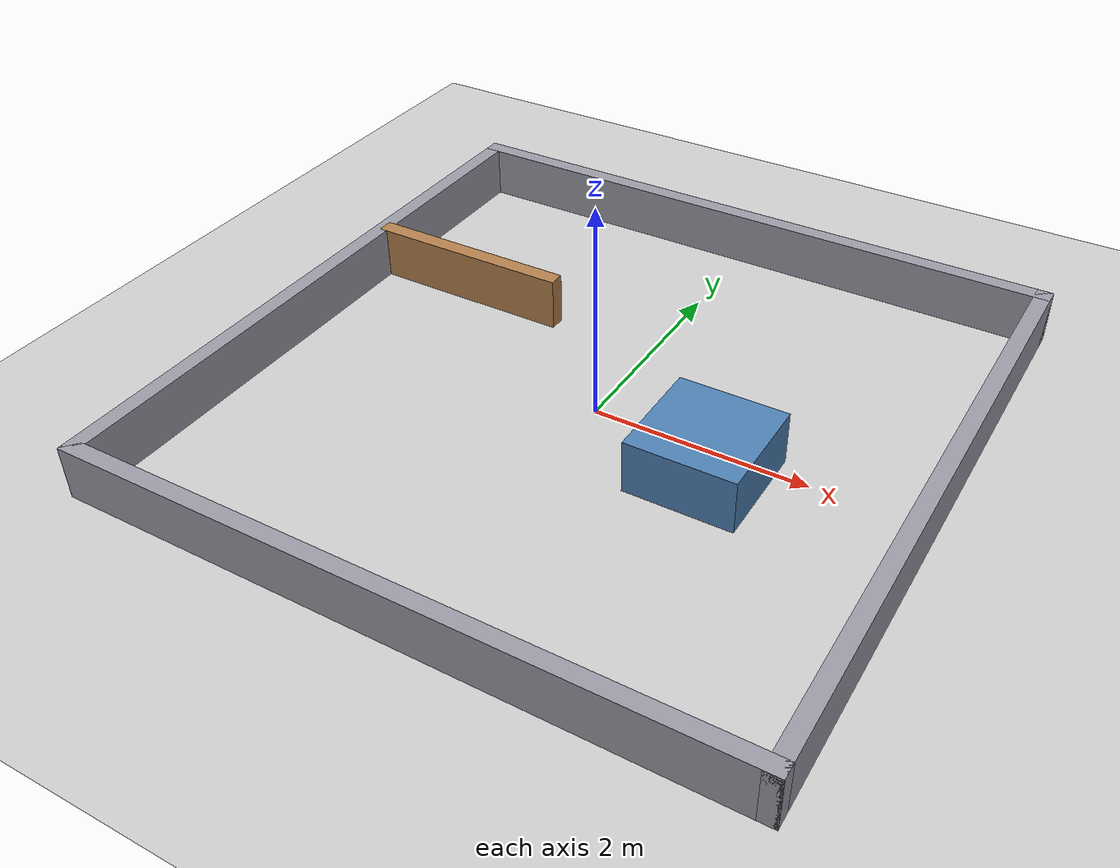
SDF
<?xml version="1.0" ?>
<sdf version="1.8">
  <world name="wall_follow_world">

    <plugin filename="gz-sim-physics-system" name="gz::sim::systems::Physics"/>
    <plugin filename="gz-sim-user-commands-system" name="gz::sim::systems::UserCommands"/>
    <plugin filename="gz-sim-scene-broadcaster-system" name="gz::sim::systems::SceneBroadcaster"/>
    <plugin filename="gz-sim-sensors-system" name="gz::sim::systems::Sensors">
      <render_engine>ogre2</render_engine>
    </plugin>
    <plugin filename="gz-sim-imu-system" name="gz::sim::systems::Imu"/>

    <physics name="1ms" type="ignored">
      <max_step_size>0.001</max_step_size>
      <real_time_factor>1.0</real_time_factor>
    </physics>

    <scene>
      <ambient>0.4 0.4 0.4 1</ambient>
      <background>0.7 0.7 0.7 1</background>
      <shadows>true</shadows>
    </scene>

    <light type="directional" name="sun">
      <cast_shadows>true</cast_shadows>
      <pose>0 0 10 0 0 0</pose>
      <diffuse>0.9 0.9 0.9 1</diffuse>
      <specular>0.2 0.2 0.2 1</specular>
      <direction>-0.5 0.1 -0.9</direction>
    </light>

    <model name="ground_plane">
      <static>true</static>
      <link name="link">
        <collision name="collision">
          <geometry><plane><normal>0 0 1</normal><size>20 20</size></plane></geometry>
        </collision>
        <visual name="visual">
          <geometry><plane><normal>0 0 1</normal><size>20 20</size></plane></geometry>
          <material><ambient>0.8 0.8 0.8 1</ambient><diffuse>0.8 0.8 0.8 1</diffuse></material>
        </visual>
      </link>
    </model>

    <model name="room">
      <static>true</static>
      <link name="walls">
        <collision name="south"><pose>0 -3 0.25 0 0 0</pose><geometry><box><size>6.15 0.15 0.5</size></box></geometry></collision>
        <visual name="south_v"><pose>0 -3 0.25 0 0 0</pose><geometry><box><size>6.15 0.15 0.5</size></box></geometry>
          <material><ambient>0.6 0.6 0.65 1</ambient><diffuse>0.6 0.6 0.65 1</diffuse></material></visual>
        <collision name="north"><pose>0 3 0.25 0 0 0</pose><geometry><box><size>6.15 0.15 0.5</size></box></geometry></collision>
        <visual name="north_v"><pose>0 3 0.25 0 0 0</pose><geometry><box><size>6.15 0.15 0.5</size></box></geometry>
          <material><ambient>0.6 0.6 0.65 1</ambient><diffuse>0.6 0.6 0.65 1</diffuse></material></visual>
        <collision name="east"><pose>3 0 0.25 0 0 0</pose><geometry><box><size>0.15 6.15 0.5</size></box></geometry></collision>
        <visual name="east_v"><pose>3 0 0.25 0 0 0</pose><geometry><box><size>0.15 6.15 0.5</size></box></geometry>
          <material><ambient>0.6 0.6 0.65 1</ambient><diffuse>0.6 0.6 0.65 1</diffuse></material></visual>
        <collision name="west"><pose>-3 0 0.25 0 0 0</pose><geometry><box><size>0.15 6.15 0.5</size></box></geometry></collision>
        <visual name="west_v"><pose>-3 0 0.25 0 0 0</pose><geometry><box><size>0.15 6.15 0.5</size></box></geometry>
          <material><ambient>0.6 0.6 0.65 1</ambient><diffuse>0.6 0.6 0.65 1</diffuse></material></visual>
        <!-- partition: west wall -> x=-1 at y=1 (inside corner at the wall, outside corner at the tip) -->
        <collision name="partition"><pose>-2 1 0.25 0 0 0</pose><geometry><box><size>2.0 0.15 0.5</size></box></geometry></collision>
        <visual name="partition_v"><pose>-2 1 0.25 0 0 0</pose><geometry><box><size>2.0 0.15 0.5</size></box></geometry>
          <material><ambient>0.7 0.5 0.3 1</ambient><diffuse>0.7 0.5 0.3 1</diffuse></material></visual>
        <!-- free-standing block, >=1.2 m from every wall path so the follower never switches to it mid-lap -->
        <collision name="block"><pose>1.2 -0.3 0.25 0 0 0</pose><geometry><box><size>1.0 1.0 0.5</size></box></geometry></collision>
        <visual name="block_v"><pose>1.2 -0.3 0.25 0 0 0</pose><geometry><box><size>1.0 1.0 0.5</size></box></geometry>
          <material><ambient>0.3 0.5 0.7 1</ambient><diffuse>0.3 0.5 0.7 1</diffuse></material></visual>
      </link>
    </model>

  </world>
</sdf>
